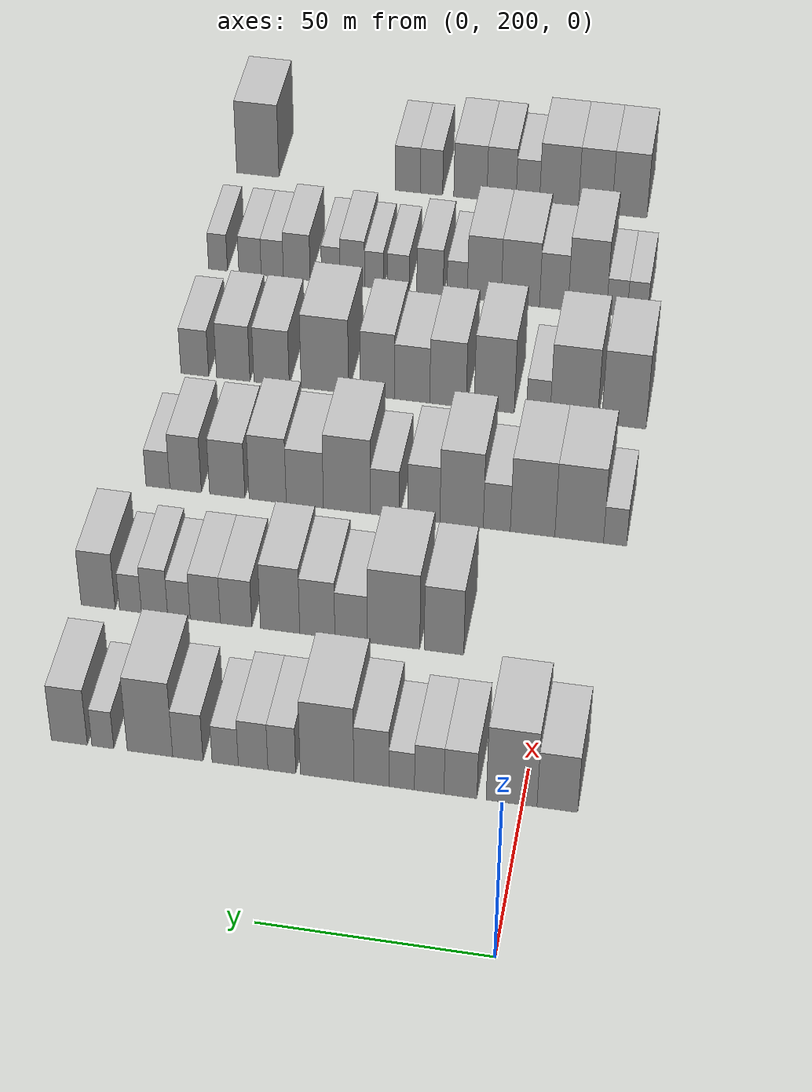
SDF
<sdf version="1.6">
 <world name="default">
  <model name="building_89">
   <static>1</static>
   <pose>50.0000 192.5561 0 0.000000 0.000000 0.000000</pose>
   <link name="link">
    <pose>0 0 9.00 0 0 0</pose>
    <collision name="collision"><geometry><box><size>20.0000 8.7755 18.0000</size></box></geometry></collision>
    <visual name="visual">
     <cast_shadows>0</cast_shadows>
     <geometry><box><size>20.0000 8.7755 18.0000</size></box></geometry>
     <material>
      <script>
       <uri>model://HANNAS_wall/materials/scripts</uri>
       <uri>model://HANNAS_wall/materials/textures</uri>
       <name>vrc/HANNAS_wall</name>
      </script>
     </material>
    </visual>
   </link>
  </model>
  <model name="building_90">
   <static>1</static>
   <pose>50.0000 202.4219 0 0.000000 0.000000 0.000000</pose>
   <link name="link">
    <pose>0 0 12.00 0 0 0</pose>
    <collision name="collision"><geometry><box><size>20.0000 10.9561 24.0000</size></box></geometry></collision>
    <visual name="visual">
     <cast_shadows>0</cast_shadows>
     <geometry><box><size>20.0000 10.9561 24.0000</size></box></geometry>
     <material>
      <script>
       <uri>model://HANNAS_wall/materials/scripts</uri>
       <uri>model://HANNAS_wall/materials/textures</uri>
       <name>vrc/HANNAS_wall</name>
      </script>
     </material>
    </visual>
   </link>
  </model>
  <model name="building_91">
   <static>1</static>
   <pose>50.0000 213.4700 0 0.000000 0.000000 0.000000</pose>
   <link name="link">
    <pose>0 0 7.50 0 0 0</pose>
    <collision name="collision"><geometry><box><size>20.0000 7.1399 15.0000</size></box></geometry></collision>
    <visual name="visual">
     <cast_shadows>0</cast_shadows>
     <geometry><box><size>20.0000 7.1399 15.0000</size></box></geometry>
     <material>
      <script>
       <uri>model://HANNAS_wall/materials/scripts</uri>
       <uri>model://HANNAS_wall/materials/textures</uri>
       <name>vrc/HANNAS_wall</name>
      </script>
     </material>
    </visual>
   </link>
  </model>
  <model name="building_92">
   <static>1</static>
   <pose>50.0000 220.2435 0 0.000000 0.000000 0.000000</pose>
   <link name="link">
    <pose>0 0 7.50 0 0 0</pose>
    <collision name="collision"><geometry><box><size>20.0000 6.4072 15.0000</size></box></geometry></collision>
    <visual name="visual">
     <cast_shadows>0</cast_shadows>
     <geometry><box><size>20.0000 6.4072 15.0000</size></box></geometry>
     <material>
      <script>
       <uri>model://HANNAS_wall/materials/scripts</uri>
       <uri>model://HANNAS_wall/materials/textures</uri>
       <name>vrc/HANNAS_wall</name>
      </script>
     </material>
    </visual>
   </link>
  </model>
  <model name="building_93">
   <static>1</static>
   <pose>50.0000 226.2463 0 0.000000 0.000000 0.000000</pose>
   <link name="link">
    <pose>0 0 6.00 0 0 0</pose>
    <collision name="collision"><geometry><box><size>20.0000 5.5982 12.0000</size></box></geometry></collision>
    <visual name="visual">
     <cast_shadows>0</cast_shadows>
     <geometry><box><size>20.0000 5.5982 12.0000</size></box></geometry>
     <material>
      <script>
       <uri>model://HANNAS_wall/materials/scripts</uri>
       <uri>model://HANNAS_wall/materials/textures</uri>
       <name>vrc/HANNAS_wall</name>
      </script>
     </material>
    </visual>
   </link>
  </model>
  <model name="building_94">
   <static>1</static>
   <pose>50.0000 232.8558 0 0.000000 0.000000 0.000000</pose>
   <link name="link">
    <pose>0 0 9.00 0 0 0</pose>
    <collision name="collision"><geometry><box><size>20.0000 7.6208 18.0000</size></box></geometry></collision>
    <visual name="visual">
     <cast_shadows>0</cast_shadows>
     <geometry><box><size>20.0000 7.6208 18.0000</size></box></geometry>
     <material>
      <script>
       <uri>model://HANNAS_wall/materials/scripts</uri>
       <uri>model://HANNAS_wall/materials/textures</uri>
       <name>vrc/HANNAS_wall</name>
      </script>
     </material>
    </visual>
   </link>
  </model>
  <model name="building_95">
   <static>1</static>
   <pose>50.0000 242.5334 0 0.000000 0.000000 0.000000</pose>
   <link name="link">
    <pose>0 0 12.00 0 0 0</pose>
    <collision name="collision"><geometry><box><size>20.0000 11.7346 24.0000</size></box></geometry></collision>
    <visual name="visual">
     <cast_shadows>0</cast_shadows>
     <geometry><box><size>20.0000 11.7346 24.0000</size></box></geometry>
     <material>
      <script>
       <uri>model://HANNAS_wall/materials/scripts</uri>
       <uri>model://HANNAS_wall/materials/textures</uri>
       <name>vrc/HANNAS_wall</name>
      </script>
     </material>
    </visual>
   </link>
  </model>
  <model name="building_96">
   <static>1</static>
   <pose>50.0000 252.4627 0 0.000000 0.000000 0.000000</pose>
   <link name="link">
    <pose>0 0 7.50 0 0 0</pose>
    <collision name="collision"><geometry><box><size>20.0000 6.1239 15.0000</size></box></geometry></collision>
    <visual name="visual">
     <cast_shadows>0</cast_shadows>
     <geometry><box><size>20.0000 6.1239 15.0000</size></box></geometry>
     <material>
      <script>
       <uri>model://HANNAS_wall/materials/scripts</uri>
       <uri>model://HANNAS_wall/materials/textures</uri>
       <name>vrc/HANNAS_wall</name>
      </script>
     </material>
    </visual>
   </link>
  </model>
  <model name="building_97">
   <static>1</static>
   <pose>50.0000 258.7908 0 0.000000 0.000000 0.000000</pose>
   <link name="link">
    <pose>0 0 7.50 0 0 0</pose>
    <collision name="collision"><geometry><box><size>20.0000 6.5323 15.0000</size></box></geometry></collision>
    <visual name="visual">
     <cast_shadows>0</cast_shadows>
     <geometry><box><size>20.0000 6.5323 15.0000</size></box></geometry>
     <material>
      <script>
       <uri>model://HANNAS_wall/materials/scripts</uri>
       <uri>model://HANNAS_wall/materials/textures</uri>
       <name>vrc/HANNAS_wall</name>
      </script>
     </material>
    </visual>
   </link>
  </model>
  <model name="building_98">
   <static>1</static>
   <pose>50.0000 264.9572 0 0.000000 0.000000 0.000000</pose>
   <link name="link">
    <pose>0 0 6.00 0 0 0</pose>
    <collision name="collision"><geometry><box><size>20.0000 5.8004 12.0000</size></box></geometry></collision>
    <visual name="visual">
     <cast_shadows>0</cast_shadows>
     <geometry><box><size>20.0000 5.8004 12.0000</size></box></geometry>
     <material>
      <script>
       <uri>model://HANNAS_wall/materials/scripts</uri>
       <uri>model://HANNAS_wall/materials/textures</uri>
       <name>vrc/HANNAS_wall</name>
      </script>
     </material>
    </visual>
   </link>
  </model>
  <model name="building_99">
   <static>1</static>
   <pose>50.0000 273.2261 0 0.000000 0.000000 0.000000</pose>
   <link name="link">
    <pose>0 0 7.50 0 0 0</pose>
    <collision name="collision"><geometry><box><size>20.0000 6.7375 15.0000</size></box></geometry></collision>
    <visual name="visual">
     <cast_shadows>0</cast_shadows>
     <geometry><box><size>20.0000 6.7375 15.0000</size></box></geometry>
     <material>
      <script>
       <uri>model://HANNAS_wall/materials/scripts</uri>
       <uri>model://HANNAS_wall/materials/textures</uri>
       <name>vrc/HANNAS_wall</name>
      </script>
     </material>
    </visual>
   </link>
  </model>
  <model name="building_100">
   <static>1</static>
   <pose>50.0000 281.6582 0 0.000000 0.000000 0.000000</pose>
   <link name="link">
    <pose>0 0 12.00 0 0 0</pose>
    <collision name="collision"><geometry><box><size>20.0000 10.1267 24.0000</size></box></geometry></collision>
    <visual name="visual">
     <cast_shadows>0</cast_shadows>
     <geometry><box><size>20.0000 10.1267 24.0000</size></box></geometry>
     <material>
      <script>
       <uri>model://HANNAS_wall/materials/scripts</uri>
       <uri>model://HANNAS_wall/materials/textures</uri>
       <name>vrc/HANNAS_wall</name>
      </script>
     </material>
    </visual>
   </link>
  </model>
  <model name="building_101">
   <static>1</static>
   <pose>50.0000 292.1783 0 0.000000 0.000000 0.000000</pose>
   <link name="link">
    <pose>0 0 6.00 0 0 0</pose>
    <collision name="collision"><geometry><box><size>20.0000 4.9134 12.0000</size></box></geometry></collision>
    <visual name="visual">
     <cast_shadows>0</cast_shadows>
     <geometry><box><size>20.0000 4.9134 12.0000</size></box></geometry>
     <material>
      <script>
       <uri>model://HANNAS_wall/materials/scripts</uri>
       <uri>model://HANNAS_wall/materials/textures</uri>
       <name>vrc/HANNAS_wall</name>
      </script>
     </material>
    </visual>
   </link>
  </model>
  <model name="building_102">
   <static>1</static>
   <pose>50.0000 299.6724 0 0.000000 0.000000 0.000000</pose>
   <link name="link">
    <pose>0 0 9.00 0 0 0</pose>
    <collision name="collision"><geometry><box><size>20.0000 8.0748 18.0000</size></box></geometry></collision>
    <visual name="visual">
     <cast_shadows>0</cast_shadows>
     <geometry><box><size>20.0000 8.0748 18.0000</size></box></geometry>
     <material>
      <script>
       <uri>model://HANNAS_wall/materials/scripts</uri>
       <uri>model://HANNAS_wall/materials/textures</uri>
       <name>vrc/HANNAS_wall</name>
      </script>
     </material>
    </visual>
   </link>
  </model>
  <model name="building_228">
   <static>1</static>
   <pose>90.0000 223.4362 0 0.000000 0.000000 0.000000</pose>
   <link name="link">
    <pose>0 0 10.50 0 0 0</pose>
    <collision name="collision"><geometry><box><size>20.0000 8.9906 21.0000</size></box></geometry></collision>
    <visual name="visual">
     <cast_shadows>0</cast_shadows>
     <geometry><box><size>20.0000 8.9906 21.0000</size></box></geometry>
     <material>
      <script>
       <uri>model://HANNAS_wall/materials/scripts</uri>
       <uri>model://HANNAS_wall/materials/textures</uri>
       <name>vrc/HANNAS_wall</name>
      </script>
     </material>
    </visual>
   </link>
  </model>
  <model name="building_229">
   <static>1</static>
   <pose>90.0000 234.9089 0 0.000000 0.000000 0.000000</pose>
   <link name="link">
    <pose>0 0 12.00 0 0 0</pose>
    <collision name="collision"><geometry><box><size>20.0000 11.9550 24.0000</size></box></geometry></collision>
    <visual name="visual">
     <cast_shadows>0</cast_shadows>
     <geometry><box><size>20.0000 11.9550 24.0000</size></box></geometry>
     <material>
      <script>
       <uri>model://HANNAS_wall/materials/scripts</uri>
       <uri>model://HANNAS_wall/materials/textures</uri>
       <name>vrc/HANNAS_wall</name>
      </script>
     </material>
    </visual>
   </link>
  </model>
  <model name="building_230">
   <static>1</static>
   <pose>90.0000 244.6175 0 0.000000 0.000000 0.000000</pose>
   <link name="link">
    <pose>0 0 7.50 0 0 0</pose>
    <collision name="collision"><geometry><box><size>20.0000 7.4621 15.0000</size></box></geometry></collision>
    <visual name="visual">
     <cast_shadows>0</cast_shadows>
     <geometry><box><size>20.0000 7.4621 15.0000</size></box></geometry>
     <material>
      <script>
       <uri>model://HANNAS_wall/materials/scripts</uri>
       <uri>model://HANNAS_wall/materials/textures</uri>
       <name>vrc/HANNAS_wall</name>
      </script>
     </material>
    </visual>
   </link>
  </model>
  <model name="building_231">
   <static>1</static>
   <pose>90.0000 252.3873 0 0.000000 0.000000 0.000000</pose>
   <link name="link">
    <pose>0 0 9.00 0 0 0</pose>
    <collision name="collision"><geometry><box><size>20.0000 8.0774 18.0000</size></box></geometry></collision>
    <visual name="visual">
     <cast_shadows>0</cast_shadows>
     <geometry><box><size>20.0000 8.0774 18.0000</size></box></geometry>
     <material>
      <script>
       <uri>model://HANNAS_wall/materials/scripts</uri>
       <uri>model://HANNAS_wall/materials/textures</uri>
       <name>vrc/HANNAS_wall</name>
      </script>
     </material>
    </visual>
   </link>
  </model>
  <model name="building_232">
   <static>1</static>
   <pose>90.0000 260.9508 0 0.000000 0.000000 0.000000</pose>
   <link name="link">
    <pose>0 0 10.50 0 0 0</pose>
    <collision name="collision"><geometry><box><size>20.0000 9.0497 21.0000</size></box></geometry></collision>
    <visual name="visual">
     <cast_shadows>0</cast_shadows>
     <geometry><box><size>20.0000 9.0497 21.0000</size></box></geometry>
     <material>
      <script>
       <uri>model://HANNAS_wall/materials/scripts</uri>
       <uri>model://HANNAS_wall/materials/textures</uri>
       <name>vrc/HANNAS_wall</name>
      </script>
     </material>
    </visual>
   </link>
  </model>
  <model name="building_233">
   <static>1</static>
   <pose>90.0000 271.1284 0 0.000000 0.000000 0.000000</pose>
   <link name="link">
    <pose>0 0 7.50 0 0 0</pose>
    <collision name="collision"><geometry><box><size>20.0000 7.3056 15.0000</size></box></geometry></collision>
    <visual name="visual">
     <cast_shadows>0</cast_shadows>
     <geometry><box><size>20.0000 7.3056 15.0000</size></box></geometry>
     <material>
      <script>
       <uri>model://HANNAS_wall/materials/scripts</uri>
       <uri>model://HANNAS_wall/materials/textures</uri>
       <name>vrc/HANNAS_wall</name>
      </script>
     </material>
    </visual>
   </link>
  </model>
  <model name="building_234">
   <static>1</static>
   <pose>90.0000 278.2809 0 0.000000 0.000000 0.000000</pose>
   <link name="link">
    <pose>0 0 7.50 0 0 0</pose>
    <collision name="collision"><geometry><box><size>20.0000 6.9993 15.0000</size></box></geometry></collision>
    <visual name="visual">
     <cast_shadows>0</cast_shadows>
     <geometry><box><size>20.0000 6.9993 15.0000</size></box></geometry>
     <material>
      <script>
       <uri>model://HANNAS_wall/materials/scripts</uri>
       <uri>model://HANNAS_wall/materials/textures</uri>
       <name>vrc/HANNAS_wall</name>
      </script>
     </material>
    </visual>
   </link>
  </model>
  <model name="building_235">
   <static>1</static>
   <pose>90.0000 284.4036 0 0.000000 0.000000 0.000000</pose>
   <link name="link">
    <pose>0 0 6.00 0 0 0</pose>
    <collision name="collision"><geometry><box><size>20.0000 5.2460 12.0000</size></box></geometry></collision>
    <visual name="visual">
     <cast_shadows>0</cast_shadows>
     <geometry><box><size>20.0000 5.2460 12.0000</size></box></geometry>
     <material>
      <script>
       <uri>model://HANNAS_wall/materials/scripts</uri>
       <uri>model://HANNAS_wall/materials/textures</uri>
       <name>vrc/HANNAS_wall</name>
      </script>
     </material>
    </visual>
   </link>
  </model>
  <model name="building_236">
   <static>1</static>
   <pose>90.0000 290.0798 0 0.000000 0.000000 0.000000</pose>
   <link name="link">
    <pose>0 0 7.50 0 0 0</pose>
    <collision name="collision"><geometry><box><size>20.0000 6.1064 15.0000</size></box></geometry></collision>
    <visual name="visual">
     <cast_shadows>0</cast_shadows>
     <geometry><box><size>20.0000 6.1064 15.0000</size></box></geometry>
     <material>
      <script>
       <uri>model://HANNAS_wall/materials/scripts</uri>
       <uri>model://HANNAS_wall/materials/textures</uri>
       <name>vrc/HANNAS_wall</name>
      </script>
     </material>
    </visual>
   </link>
  </model>
  <model name="building_237">
   <static>1</static>
   <pose>90.0000 295.7086 0 0.000000 0.000000 0.000000</pose>
   <link name="link">
    <pose>0 0 6.00 0 0 0</pose>
    <collision name="collision"><geometry><box><size>20.0000 5.1510 12.0000</size></box></geometry></collision>
    <visual name="visual">
     <cast_shadows>0</cast_shadows>
     <geometry><box><size>20.0000 5.1510 12.0000</size></box></geometry>
     <material>
      <script>
       <uri>model://HANNAS_wall/materials/scripts</uri>
       <uri>model://HANNAS_wall/materials/textures</uri>
       <name>vrc/HANNAS_wall</name>
      </script>
     </material>
    </visual>
   </link>
  </model>
  <model name="building_238">
   <static>1</static>
   <pose>90.0000 303.2688 0 0.000000 0.000000 0.000000</pose>
   <link name="link">
    <pose>0 0 9.00 0 0 0</pose>
    <collision name="collision"><geometry><box><size>20.0000 7.9694 18.0000</size></box></geometry></collision>
    <visual name="visual">
     <cast_shadows>0</cast_shadows>
     <geometry><box><size>20.0000 7.9694 18.0000</size></box></geometry>
     <material>
      <script>
       <uri>model://HANNAS_wall/materials/scripts</uri>
       <uri>model://HANNAS_wall/materials/textures</uri>
       <name>vrc/HANNAS_wall</name>
      </script>
     </material>
    </visual>
   </link>
  </model>
  <model name="building_363">
   <static>1</static>
   <pose>130.0000 189.4363 0 0.000000 0.000000 0.000000</pose>
   <link name="link">
    <pose>0 0 6.00 0 0 0</pose>
    <collision name="collision"><geometry><box><size>20.0000 5.4448 12.0000</size></box></geometry></collision>
    <visual name="visual">
     <cast_shadows>0</cast_shadows>
     <geometry><box><size>20.0000 5.4448 12.0000</size></box></geometry>
     <material>
      <script>
       <uri>model://HANNAS_wall/materials/scripts</uri>
       <uri>model://HANNAS_wall/materials/textures</uri>
       <name>vrc/HANNAS_wall</name>
      </script>
     </material>
    </visual>
   </link>
  </model>
  <model name="building_364">
   <static>1</static>
   <pose>130.0000 197.8710 0 0.000000 0.000000 0.000000</pose>
   <link name="link">
    <pose>0 0 12.00 0 0 0</pose>
    <collision name="collision"><geometry><box><size>20.0000 11.4246 24.0000</size></box></geometry></collision>
    <visual name="visual">
     <cast_shadows>0</cast_shadows>
     <geometry><box><size>20.0000 11.4246 24.0000</size></box></geometry>
     <material>
      <script>
       <uri>model://HANNAS_wall/materials/scripts</uri>
       <uri>model://HANNAS_wall/materials/textures</uri>
       <name>vrc/HANNAS_wall</name>
      </script>
     </material>
    </visual>
   </link>
  </model>
  <model name="building_365">
   <static>1</static>
   <pose>130.0000 208.8414 0 0.000000 0.000000 0.000000</pose>
   <link name="link">
    <pose>0 0 12.00 0 0 0</pose>
    <collision name="collision"><geometry><box><size>20.0000 10.5162 24.0000</size></box></geometry></collision>
    <visual name="visual">
     <cast_shadows>0</cast_shadows>
     <geometry><box><size>20.0000 10.5162 24.0000</size></box></geometry>
     <material>
      <script>
       <uri>model://HANNAS_wall/materials/scripts</uri>
       <uri>model://HANNAS_wall/materials/textures</uri>
       <name>vrc/HANNAS_wall</name>
      </script>
     </material>
    </visual>
   </link>
  </model>
  <model name="building_366">
   <static>1</static>
   <pose>130.0000 217.3030 0 0.000000 0.000000 0.000000</pose>
   <link name="link">
    <pose>0 0 7.50 0 0 0</pose>
    <collision name="collision"><geometry><box><size>20.0000 6.4068 15.0000</size></box></geometry></collision>
    <visual name="visual">
     <cast_shadows>0</cast_shadows>
     <geometry><box><size>20.0000 6.4068 15.0000</size></box></geometry>
     <material>
      <script>
       <uri>model://HANNAS_wall/materials/scripts</uri>
       <uri>model://HANNAS_wall/materials/textures</uri>
       <name>vrc/HANNAS_wall</name>
      </script>
     </material>
    </visual>
   </link>
  </model>
  <model name="building_367">
   <static>1</static>
   <pose>130.0000 225.6526 0 0.000000 0.000000 0.000000</pose>
   <link name="link">
    <pose>0 0 12.00 0 0 0</pose>
    <collision name="collision"><geometry><box><size>20.0000 10.2924 24.0000</size></box></geometry></collision>
    <visual name="visual">
     <cast_shadows>0</cast_shadows>
     <geometry><box><size>20.0000 10.2924 24.0000</size></box></geometry>
     <material>
      <script>
       <uri>model://HANNAS_wall/materials/scripts</uri>
       <uri>model://HANNAS_wall/materials/textures</uri>
       <name>vrc/HANNAS_wall</name>
      </script>
     </material>
    </visual>
   </link>
  </model>
  <model name="building_368">
   <static>1</static>
   <pose>130.0000 234.6421 0 0.000000 0.000000 0.000000</pose>
   <link name="link">
    <pose>0 0 9.00 0 0 0</pose>
    <collision name="collision"><geometry><box><size>20.0000 7.6867 18.0000</size></box></geometry></collision>
    <visual name="visual">
     <cast_shadows>0</cast_shadows>
     <geometry><box><size>20.0000 7.6867 18.0000</size></box></geometry>
     <material>
      <script>
       <uri>model://HANNAS_wall/materials/scripts</uri>
       <uri>model://HANNAS_wall/materials/textures</uri>
       <name>vrc/HANNAS_wall</name>
      </script>
     </material>
    </visual>
   </link>
  </model>
  <model name="building_369">
   <static>1</static>
   <pose>130.0000 243.9043 0 0.000000 0.000000 0.000000</pose>
   <link name="link">
    <pose>0 0 7.50 0 0 0</pose>
    <collision name="collision"><geometry><box><size>20.0000 6.8377 15.0000</size></box></geometry></collision>
    <visual name="visual">
     <cast_shadows>0</cast_shadows>
     <geometry><box><size>20.0000 6.8377 15.0000</size></box></geometry>
     <material>
      <script>
       <uri>model://HANNAS_wall/materials/scripts</uri>
       <uri>model://HANNAS_wall/materials/textures</uri>
       <name>vrc/HANNAS_wall</name>
      </script>
     </material>
    </visual>
   </link>
  </model>
  <model name="building_370">
   <static>1</static>
   <pose>130.0000 252.9753 0 0.000000 0.000000 0.000000</pose>
   <link name="link">
    <pose>0 0 12.00 0 0 0</pose>
    <collision name="collision"><geometry><box><size>20.0000 11.3042 24.0000</size></box></geometry></collision>
    <visual name="visual">
     <cast_shadows>0</cast_shadows>
     <geometry><box><size>20.0000 11.3042 24.0000</size></box></geometry>
     <material>
      <script>
       <uri>model://HANNAS_wall/materials/scripts</uri>
       <uri>model://HANNAS_wall/materials/textures</uri>
       <name>vrc/HANNAS_wall</name>
      </script>
     </material>
    </visual>
   </link>
  </model>
  <model name="building_371">
   <static>1</static>
   <pose>130.0000 263.1048 0 0.000000 0.000000 0.000000</pose>
   <link name="link">
    <pose>0 0 9.00 0 0 0</pose>
    <collision name="collision"><geometry><box><size>20.0000 8.9550 18.0000</size></box></geometry></collision>
    <visual name="visual">
     <cast_shadows>0</cast_shadows>
     <geometry><box><size>20.0000 8.9550 18.0000</size></box></geometry>
     <material>
      <script>
       <uri>model://HANNAS_wall/materials/scripts</uri>
       <uri>model://HANNAS_wall/materials/textures</uri>
       <name>vrc/HANNAS_wall</name>
      </script>
     </material>
    </visual>
   </link>
  </model>
  <model name="building_372">
   <static>1</static>
   <pose>130.0000 272.0716 0 0.000000 0.000000 0.000000</pose>
   <link name="link">
    <pose>0 0 10.50 0 0 0</pose>
    <collision name="collision"><geometry><box><size>20.0000 8.9786 21.0000</size></box></geometry></collision>
    <visual name="visual">
     <cast_shadows>0</cast_shadows>
     <geometry><box><size>20.0000 8.9786 21.0000</size></box></geometry>
     <material>
      <script>
       <uri>model://HANNAS_wall/materials/scripts</uri>
       <uri>model://HANNAS_wall/materials/textures</uri>
       <name>vrc/HANNAS_wall</name>
      </script>
     </material>
    </visual>
   </link>
  </model>
  <model name="building_373">
   <static>1</static>
   <pose>130.0000 281.8407 0 0.000000 0.000000 0.000000</pose>
   <link name="link">
    <pose>0 0 9.00 0 0 0</pose>
    <collision name="collision"><geometry><box><size>20.0000 8.5597 18.0000</size></box></geometry></collision>
    <visual name="visual">
     <cast_shadows>0</cast_shadows>
     <geometry><box><size>20.0000 8.5597 18.0000</size></box></geometry>
     <material>
      <script>
       <uri>model://HANNAS_wall/materials/scripts</uri>
       <uri>model://HANNAS_wall/materials/textures</uri>
       <name>vrc/HANNAS_wall</name>
      </script>
     </material>
    </visual>
   </link>
  </model>
  <model name="building_374">
   <static>1</static>
   <pose>130.0000 291.9577 0 0.000000 0.000000 0.000000</pose>
   <link name="link">
    <pose>0 0 9.00 0 0 0</pose>
    <collision name="collision"><geometry><box><size>20.0000 7.6742 18.0000</size></box></geometry></collision>
    <visual name="visual">
     <cast_shadows>0</cast_shadows>
     <geometry><box><size>20.0000 7.6742 18.0000</size></box></geometry>
     <material>
      <script>
       <uri>model://HANNAS_wall/materials/scripts</uri>
       <uri>model://HANNAS_wall/materials/textures</uri>
       <name>vrc/HANNAS_wall</name>
      </script>
     </material>
    </visual>
   </link>
  </model>
  <model name="building_375">
   <static>1</static>
   <pose>130.0000 298.6997 0 0.000000 0.000000 0.000000</pose>
   <link name="link">
    <pose>0 0 6.00 0 0 0</pose>
    <collision name="collision"><geometry><box><size>20.0000 5.8099 12.0000</size></box></geometry></collision>
    <visual name="visual">
     <cast_shadows>0</cast_shadows>
     <geometry><box><size>20.0000 5.8099 12.0000</size></box></geometry>
     <material>
      <script>
       <uri>model://HANNAS_wall/materials/scripts</uri>
       <uri>model://HANNAS_wall/materials/textures</uri>
       <name>vrc/HANNAS_wall</name>
      </script>
     </material>
    </visual>
   </link>
  </model>
  <model name="building_494">
   <static>1</static>
   <pose>170.0000 191.9254 0 0.000000 0.000000 0.000000</pose>
   <link name="link">
    <pose>0 0 12.00 0 0 0</pose>
    <collision name="collision"><geometry><box><size>20.0000 10.8734 24.0000</size></box></geometry></collision>
    <visual name="visual">
     <cast_shadows>0</cast_shadows>
     <geometry><box><size>20.0000 10.8734 24.0000</size></box></geometry>
     <material>
      <script>
       <uri>model://HANNAS_wall/materials/scripts</uri>
       <uri>model://HANNAS_wall/materials/textures</uri>
       <name>vrc/HANNAS_wall</name>
      </script>
     </material>
    </visual>
   </link>
  </model>
  <model name="building_495">
   <static>1</static>
   <pose>170.0000 204.1786 0 0.000000 0.000000 0.000000</pose>
   <link name="link">
    <pose>0 0 12.00 0 0 0</pose>
    <collision name="collision"><geometry><box><size>20.0000 11.6330 24.0000</size></box></geometry></collision>
    <visual name="visual">
     <cast_shadows>0</cast_shadows>
     <geometry><box><size>20.0000 11.6330 24.0000</size></box></geometry>
     <material>
      <script>
       <uri>model://HANNAS_wall/materials/scripts</uri>
       <uri>model://HANNAS_wall/materials/textures</uri>
       <name>vrc/HANNAS_wall</name>
      </script>
     </material>
    </visual>
   </link>
  </model>
  <model name="building_496">
   <static>1</static>
   <pose>170.0000 212.9146 0 0.000000 0.000000 0.000000</pose>
   <link name="link">
    <pose>0 0 6.00 0 0 0</pose>
    <collision name="collision"><geometry><box><size>20.0000 5.8390 12.0000</size></box></geometry></collision>
    <visual name="visual">
     <cast_shadows>0</cast_shadows>
     <geometry><box><size>20.0000 5.8390 12.0000</size></box></geometry>
     <material>
      <script>
       <uri>model://HANNAS_wall/materials/scripts</uri>
       <uri>model://HANNAS_wall/materials/textures</uri>
       <name>vrc/HANNAS_wall</name>
      </script>
     </material>
    </visual>
   </link>
  </model>
  <model name="building_497">
   <static>1</static>
   <pose>170.0000 223.7863 0 0.000000 0.000000 0.000000</pose>
   <link name="link">
    <pose>0 0 12.00 0 0 0</pose>
    <collision name="collision"><geometry><box><size>20.0000 9.9045 24.0000</size></box></geometry></collision>
    <visual name="visual">
     <cast_shadows>0</cast_shadows>
     <geometry><box><size>20.0000 9.9045 24.0000</size></box></geometry>
     <material>
      <script>
       <uri>model://HANNAS_wall/materials/scripts</uri>
       <uri>model://HANNAS_wall/materials/textures</uri>
       <name>vrc/HANNAS_wall</name>
      </script>
     </material>
    </visual>
   </link>
  </model>
  <model name="building_498">
   <static>1</static>
   <pose>170.0000 235.2452 0 0.000000 0.000000 0.000000</pose>
   <link name="link">
    <pose>0 0 10.50 0 0 0</pose>
    <collision name="collision"><geometry><box><size>20.0000 9.0133 21.0000</size></box></geometry></collision>
    <visual name="visual">
     <cast_shadows>0</cast_shadows>
     <geometry><box><size>20.0000 9.0133 21.0000</size></box></geometry>
     <material>
      <script>
       <uri>model://HANNAS_wall/materials/scripts</uri>
       <uri>model://HANNAS_wall/materials/textures</uri>
       <name>vrc/HANNAS_wall</name>
      </script>
     </material>
    </visual>
   </link>
  </model>
  <model name="building_499">
   <static>1</static>
   <pose>170.0000 244.1071 0 0.000000 0.000000 0.000000</pose>
   <link name="link">
    <pose>0 0 9.00 0 0 0</pose>
    <collision name="collision"><geometry><box><size>20.0000 8.7104 18.0000</size></box></geometry></collision>
    <visual name="visual">
     <cast_shadows>0</cast_shadows>
     <geometry><box><size>20.0000 8.7104 18.0000</size></box></geometry>
     <material>
      <script>
       <uri>model://HANNAS_wall/materials/scripts</uri>
       <uri>model://HANNAS_wall/materials/textures</uri>
       <name>vrc/HANNAS_wall</name>
      </script>
     </material>
    </visual>
   </link>
  </model>
  <model name="building_500">
   <static>1</static>
   <pose>170.0000 252.7345 0 0.000000 0.000000 0.000000</pose>
   <link name="link">
    <pose>0 0 10.50 0 0 0</pose>
    <collision name="collision"><geometry><box><size>20.0000 8.5444 21.0000</size></box></geometry></collision>
    <visual name="visual">
     <cast_shadows>0</cast_shadows>
     <geometry><box><size>20.0000 8.5444 21.0000</size></box></geometry>
     <material>
      <script>
       <uri>model://HANNAS_wall/materials/scripts</uri>
       <uri>model://HANNAS_wall/materials/textures</uri>
       <name>vrc/HANNAS_wall</name>
      </script>
     </material>
    </visual>
   </link>
  </model>
  <model name="building_501">
   <static>1</static>
   <pose>170.0000 265.9440 0 0.000000 0.000000 0.000000</pose>
   <link name="link">
    <pose>0 0 12.00 0 0 0</pose>
    <collision name="collision"><geometry><box><size>20.0000 11.8745 24.0000</size></box></geometry></collision>
    <visual name="visual">
     <cast_shadows>0</cast_shadows>
     <geometry><box><size>20.0000 11.8745 24.0000</size></box></geometry>
     <material>
      <script>
       <uri>model://HANNAS_wall/materials/scripts</uri>
       <uri>model://HANNAS_wall/materials/textures</uri>
       <name>vrc/HANNAS_wall</name>
      </script>
     </material>
    </visual>
   </link>
  </model>
  <model name="building_502">
   <static>1</static>
   <pose>170.0000 279.3338 0 0.000000 0.000000 0.000000</pose>
   <link name="link">
    <pose>0 0 9.00 0 0 0</pose>
    <collision name="collision"><geometry><box><size>20.0000 8.9051 18.0000</size></box></geometry></collision>
    <visual name="visual">
     <cast_shadows>0</cast_shadows>
     <geometry><box><size>20.0000 8.9051 18.0000</size></box></geometry>
     <material>
      <script>
       <uri>model://HANNAS_wall/materials/scripts</uri>
       <uri>model://HANNAS_wall/materials/textures</uri>
       <name>vrc/HANNAS_wall</name>
      </script>
     </material>
    </visual>
   </link>
  </model>
  <model name="building_503">
   <static>1</static>
   <pose>170.0000 289.0062 0 0.000000 0.000000 0.000000</pose>
   <link name="link">
    <pose>0 0 9.00 0 0 0</pose>
    <collision name="collision"><geometry><box><size>20.0000 8.4397 18.0000</size></box></geometry></collision>
    <visual name="visual">
     <cast_shadows>0</cast_shadows>
     <geometry><box><size>20.0000 8.4397 18.0000</size></box></geometry>
     <material>
      <script>
       <uri>model://HANNAS_wall/materials/scripts</uri>
       <uri>model://HANNAS_wall/materials/textures</uri>
       <name>vrc/HANNAS_wall</name>
      </script>
     </material>
    </visual>
   </link>
  </model>
  <model name="building_504">
   <static>1</static>
   <pose>170.0000 298.7454 0 0.000000 0.000000 0.000000</pose>
   <link name="link">
    <pose>0 0 7.50 0 0 0</pose>
    <collision name="collision"><geometry><box><size>20.0000 7.0386 15.0000</size></box></geometry></collision>
    <visual name="visual">
     <cast_shadows>0</cast_shadows>
     <geometry><box><size>20.0000 7.0386 15.0000</size></box></geometry>
     <material>
      <script>
       <uri>model://HANNAS_wall/materials/scripts</uri>
       <uri>model://HANNAS_wall/materials/textures</uri>
       <name>vrc/HANNAS_wall</name>
      </script>
     </material>
    </visual>
   </link>
  </model>
  <model name="building_634">
   <static>1</static>
   <pose>210.0000 193.0041 0 0.000000 0.000000 0.000000</pose>
   <link name="link">
    <pose>0 0 6.00 0 0 0</pose>
    <collision name="collision"><geometry><box><size>20.0000 5.1857 12.0000</size></box></geometry></collision>
    <visual name="visual">
     <cast_shadows>0</cast_shadows>
     <geometry><box><size>20.0000 5.1857 12.0000</size></box></geometry>
     <material>
      <script>
       <uri>model://HANNAS_wall/materials/scripts</uri>
       <uri>model://HANNAS_wall/materials/textures</uri>
       <name>vrc/HANNAS_wall</name>
      </script>
     </material>
    </visual>
   </link>
  </model>
  <model name="building_635">
   <static>1</static>
   <pose>210.0000 198.2404 0 0.000000 0.000000 0.000000</pose>
   <link name="link">
    <pose>0 0 6.00 0 0 0</pose>
    <collision name="collision"><geometry><box><size>20.0000 5.2869 12.0000</size></box></geometry></collision>
    <visual name="visual">
     <cast_shadows>0</cast_shadows>
     <geometry><box><size>20.0000 5.2869 12.0000</size></box></geometry>
     <material>
      <script>
       <uri>model://HANNAS_wall/materials/scripts</uri>
       <uri>model://HANNAS_wall/materials/textures</uri>
       <name>vrc/HANNAS_wall</name>
      </script>
     </material>
    </visual>
   </link>
  </model>
  <model name="building_636">
   <static>1</static>
   <pose>210.0000 205.7988 0 0.000000 0.000000 0.000000</pose>
   <link name="link">
    <pose>0 0 12.00 0 0 0</pose>
    <collision name="collision"><geometry><box><size>20.0000 9.8299 24.0000</size></box></geometry></collision>
    <visual name="visual">
     <cast_shadows>0</cast_shadows>
     <geometry><box><size>20.0000 9.8299 24.0000</size></box></geometry>
     <material>
      <script>
       <uri>model://HANNAS_wall/materials/scripts</uri>
       <uri>model://HANNAS_wall/materials/textures</uri>
       <name>vrc/HANNAS_wall</name>
      </script>
     </material>
    </visual>
   </link>
  </model>
  <model name="building_637">
   <static>1</static>
   <pose>210.0000 214.3613 0 0.000000 0.000000 0.000000</pose>
   <link name="link">
    <pose>0 0 9.00 0 0 0</pose>
    <collision name="collision"><geometry><box><size>20.0000 7.2950 18.0000</size></box></geometry></collision>
    <visual name="visual">
     <cast_shadows>0</cast_shadows>
     <geometry><box><size>20.0000 7.2950 18.0000</size></box></geometry>
     <material>
      <script>
       <uri>model://HANNAS_wall/materials/scripts</uri>
       <uri>model://HANNAS_wall/materials/textures</uri>
       <name>vrc/HANNAS_wall</name>
      </script>
     </material>
    </visual>
   </link>
  </model>
  <model name="building_638">
   <static>1</static>
   <pose>210.0000 222.9503 0 0.000000 0.000000 0.000000</pose>
   <link name="link">
    <pose>0 0 10.50 0 0 0</pose>
    <collision name="collision"><geometry><box><size>20.0000 9.8830 21.0000</size></box></geometry></collision>
    <visual name="visual">
     <cast_shadows>0</cast_shadows>
     <geometry><box><size>20.0000 9.8830 21.0000</size></box></geometry>
     <material>
      <script>
       <uri>model://HANNAS_wall/materials/scripts</uri>
       <uri>model://HANNAS_wall/materials/textures</uri>
       <name>vrc/HANNAS_wall</name>
      </script>
     </material>
    </visual>
   </link>
  </model>
  <model name="building_639">
   <static>1</static>
   <pose>210.0000 232.2460 0 0.000000 0.000000 0.000000</pose>
   <link name="link">
    <pose>0 0 10.50 0 0 0</pose>
    <collision name="collision"><geometry><box><size>20.0000 8.7084 21.0000</size></box></geometry></collision>
    <visual name="visual">
     <cast_shadows>0</cast_shadows>
     <geometry><box><size>20.0000 8.7084 21.0000</size></box></geometry>
     <material>
      <script>
       <uri>model://HANNAS_wall/materials/scripts</uri>
       <uri>model://HANNAS_wall/materials/textures</uri>
       <name>vrc/HANNAS_wall</name>
      </script>
     </material>
    </visual>
   </link>
  </model>
  <model name="building_640">
   <static>1</static>
   <pose>210.0000 239.2090 0 0.000000 0.000000 0.000000</pose>
   <link name="link">
    <pose>0 0 6.00 0 0 0</pose>
    <collision name="collision"><geometry><box><size>20.0000 5.2176 12.0000</size></box></geometry></collision>
    <visual name="visual">
     <cast_shadows>0</cast_shadows>
     <geometry><box><size>20.0000 5.2176 12.0000</size></box></geometry>
     <material>
      <script>
       <uri>model://HANNAS_wall/materials/scripts</uri>
       <uri>model://HANNAS_wall/materials/textures</uri>
       <name>vrc/HANNAS_wall</name>
      </script>
     </material>
    </visual>
   </link>
  </model>
  <model name="building_641">
   <static>1</static>
   <pose>210.0000 246.2357 0 0.000000 0.000000 0.000000</pose>
   <link name="link">
    <pose>0 0 7.50 0 0 0</pose>
    <collision name="collision"><geometry><box><size>20.0000 6.8360 15.0000</size></box></geometry></collision>
    <visual name="visual">
     <cast_shadows>0</cast_shadows>
     <geometry><box><size>20.0000 6.8360 15.0000</size></box></geometry>
     <material>
      <script>
       <uri>model://HANNAS_wall/materials/scripts</uri>
       <uri>model://HANNAS_wall/materials/textures</uri>
       <name>vrc/HANNAS_wall</name>
      </script>
     </material>
    </visual>
   </link>
  </model>
  <model name="building_642">
   <static>1</static>
   <pose>210.0000 254.4975 0 0.000000 0.000000 0.000000</pose>
   <link name="link">
    <pose>0 0 6.00 0 0 0</pose>
    <collision name="collision"><geometry><box><size>20.0000 5.6874 12.0000</size></box></geometry></collision>
    <visual name="visual">
     <cast_shadows>0</cast_shadows>
     <geometry><box><size>20.0000 5.6874 12.0000</size></box></geometry>
     <material>
      <script>
       <uri>model://HANNAS_wall/materials/scripts</uri>
       <uri>model://HANNAS_wall/materials/textures</uri>
       <name>vrc/HANNAS_wall</name>
      </script>
     </material>
    </visual>
   </link>
  </model>
  <model name="building_643">
   <static>1</static>
   <pose>210.0000 260.7799 0 0.000000 0.000000 0.000000</pose>
   <link name="link">
    <pose>0 0 6.00 0 0 0</pose>
    <collision name="collision"><geometry><box><size>20.0000 4.8775 12.0000</size></box></geometry></collision>
    <visual name="visual">
     <cast_shadows>0</cast_shadows>
     <geometry><box><size>20.0000 4.8775 12.0000</size></box></geometry>
     <material>
      <script>
       <uri>model://HANNAS_wall/materials/scripts</uri>
       <uri>model://HANNAS_wall/materials/textures</uri>
       <name>vrc/HANNAS_wall</name>
      </script>
     </material>
    </visual>
   </link>
  </model>
  <model name="building_644">
   <static>1</static>
   <pose>210.0000 266.4121 0 0.000000 0.000000 0.000000</pose>
   <link name="link">
    <pose>0 0 7.50 0 0 0</pose>
    <collision name="collision"><geometry><box><size>20.0000 6.3869 15.0000</size></box></geometry></collision>
    <visual name="visual">
     <cast_shadows>0</cast_shadows>
     <geometry><box><size>20.0000 6.3869 15.0000</size></box></geometry>
     <material>
      <script>
       <uri>model://HANNAS_wall/materials/scripts</uri>
       <uri>model://HANNAS_wall/materials/textures</uri>
       <name>vrc/HANNAS_wall</name>
      </script>
     </material>
    </visual>
   </link>
  </model>
  <model name="building_645">
   <static>1</static>
   <pose>210.0000 272.0168 0 0.000000 0.000000 0.000000</pose>
   <link name="link">
    <pose>0 0 6.00 0 0 0</pose>
    <collision name="collision"><geometry><box><size>20.0000 4.8227 12.0000</size></box></geometry></collision>
    <visual name="visual">
     <cast_shadows>0</cast_shadows>
     <geometry><box><size>20.0000 4.8227 12.0000</size></box></geometry>
     <material>
      <script>
       <uri>model://HANNAS_wall/materials/scripts</uri>
       <uri>model://HANNAS_wall/materials/textures</uri>
       <name>vrc/HANNAS_wall</name>
      </script>
     </material>
    </visual>
   </link>
  </model>
  <model name="building_646">
   <static>1</static>
   <pose>210.0000 280.9269 0 0.000000 0.000000 0.000000</pose>
   <link name="link">
    <pose>0 0 7.50 0 0 0</pose>
    <collision name="collision"><geometry><box><size>20.0000 6.9975 15.0000</size></box></geometry></collision>
    <visual name="visual">
     <cast_shadows>0</cast_shadows>
     <geometry><box><size>20.0000 6.9975 15.0000</size></box></geometry>
     <material>
      <script>
       <uri>model://HANNAS_wall/materials/scripts</uri>
       <uri>model://HANNAS_wall/materials/textures</uri>
       <name>vrc/HANNAS_wall</name>
      </script>
     </material>
    </visual>
   </link>
  </model>
  <model name="building_647">
   <static>1</static>
   <pose>210.0000 287.3478 0 0.000000 0.000000 0.000000</pose>
   <link name="link">
    <pose>0 0 6.00 0 0 0</pose>
    <collision name="collision"><geometry><box><size>20.0000 5.8443 12.0000</size></box></geometry></collision>
    <visual name="visual">
     <cast_shadows>0</cast_shadows>
     <geometry><box><size>20.0000 5.8443 12.0000</size></box></geometry>
     <material>
      <script>
       <uri>model://HANNAS_wall/materials/scripts</uri>
       <uri>model://HANNAS_wall/materials/textures</uri>
       <name>vrc/HANNAS_wall</name>
      </script>
     </material>
    </visual>
   </link>
  </model>
  <model name="building_648">
   <static>1</static>
   <pose>210.0000 293.2109 0 0.000000 0.000000 0.000000</pose>
   <link name="link">
    <pose>0 0 6.00 0 0 0</pose>
    <collision name="collision"><geometry><box><size>20.0000 5.8819 12.0000</size></box></geometry></collision>
    <visual name="visual">
     <cast_shadows>0</cast_shadows>
     <geometry><box><size>20.0000 5.8819 12.0000</size></box></geometry>
     <material>
      <script>
       <uri>model://HANNAS_wall/materials/scripts</uri>
       <uri>model://HANNAS_wall/materials/textures</uri>
       <name>vrc/HANNAS_wall</name>
      </script>
     </material>
    </visual>
   </link>
  </model>
  <model name="building_649">
   <static>1</static>
   <pose>210.0000 301.6271 0 0.000000 0.000000 0.000000</pose>
   <link name="link">
    <pose>0 0 6.00 0 0 0</pose>
    <collision name="collision"><geometry><box><size>20.0000 4.9504 12.0000</size></box></geometry></collision>
    <visual name="visual">
     <cast_shadows>0</cast_shadows>
     <geometry><box><size>20.0000 4.9504 12.0000</size></box></geometry>
     <material>
      <script>
       <uri>model://HANNAS_wall/materials/scripts</uri>
       <uri>model://HANNAS_wall/materials/textures</uri>
       <name>vrc/HANNAS_wall</name>
      </script>
     </material>
    </visual>
   </link>
  </model>
  <model name="building_766">
   <static>1</static>
   <pose>250.0000 199.4825 0 0.000000 0.000000 0.000000</pose>
   <link name="link">
    <pose>0 0 10.50 0 0 0</pose>
    <collision name="collision"><geometry><box><size>20.0000 9.2569 21.0000</size></box></geometry></collision>
    <visual name="visual">
     <cast_shadows>0</cast_shadows>
     <geometry><box><size>20.0000 9.2569 21.0000</size></box></geometry>
     <material>
      <script>
       <uri>model://HANNAS_wall/materials/scripts</uri>
       <uri>model://HANNAS_wall/materials/textures</uri>
       <name>vrc/HANNAS_wall</name>
      </script>
     </material>
    </visual>
   </link>
  </model>
  <model name="building_767">
   <static>1</static>
   <pose>250.0000 208.5823 0 0.000000 0.000000 0.000000</pose>
   <link name="link">
    <pose>0 0 10.50 0 0 0</pose>
    <collision name="collision"><geometry><box><size>20.0000 8.9428 21.0000</size></box></geometry></collision>
    <visual name="visual">
     <cast_shadows>0</cast_shadows>
     <geometry><box><size>20.0000 8.9428 21.0000</size></box></geometry>
     <material>
      <script>
       <uri>model://HANNAS_wall/materials/scripts</uri>
       <uri>model://HANNAS_wall/materials/textures</uri>
       <name>vrc/HANNAS_wall</name>
      </script>
     </material>
    </visual>
   </link>
  </model>
  <model name="building_768">
   <static>1</static>
   <pose>250.0000 218.2451 0 0.000000 0.000000 0.000000</pose>
   <link name="link">
    <pose>0 0 10.50 0 0 0</pose>
    <collision name="collision"><geometry><box><size>20.0000 10.3827 21.0000</size></box></geometry></collision>
    <visual name="visual">
     <cast_shadows>0</cast_shadows>
     <geometry><box><size>20.0000 10.3827 21.0000</size></box></geometry>
     <material>
      <script>
       <uri>model://HANNAS_wall/materials/scripts</uri>
       <uri>model://HANNAS_wall/materials/textures</uri>
       <name>vrc/HANNAS_wall</name>
      </script>
     </material>
    </visual>
   </link>
  </model>
  <model name="building_769">
   <static>1</static>
   <pose>250.0000 226.5622 0 0.000000 0.000000 0.000000</pose>
   <link name="link">
    <pose>0 0 7.50 0 0 0</pose>
    <collision name="collision"><geometry><box><size>20.0000 6.2515 15.0000</size></box></geometry></collision>
    <visual name="visual">
     <cast_shadows>0</cast_shadows>
     <geometry><box><size>20.0000 6.2515 15.0000</size></box></geometry>
     <material>
      <script>
       <uri>model://HANNAS_wall/materials/scripts</uri>
       <uri>model://HANNAS_wall/materials/textures</uri>
       <name>vrc/HANNAS_wall</name>
      </script>
     </material>
    </visual>
   </link>
  </model>
  <model name="building_770">
   <static>1</static>
   <pose>250.0000 233.5867 0 0.000000 0.000000 0.000000</pose>
   <link name="link">
    <pose>0 0 9.00 0 0 0</pose>
    <collision name="collision"><geometry><box><size>20.0000 7.7973 18.0000</size></box></geometry></collision>
    <visual name="visual">
     <cast_shadows>0</cast_shadows>
     <geometry><box><size>20.0000 7.7973 18.0000</size></box></geometry>
     <material>
      <script>
       <uri>model://HANNAS_wall/materials/scripts</uri>
       <uri>model://HANNAS_wall/materials/textures</uri>
       <name>vrc/HANNAS_wall</name>
      </script>
     </material>
    </visual>
   </link>
  </model>
  <model name="building_771">
   <static>1</static>
   <pose>250.0000 241.9253 0 0.000000 0.000000 0.000000</pose>
   <link name="link">
    <pose>0 0 9.00 0 0 0</pose>
    <collision name="collision"><geometry><box><size>20.0000 8.8799 18.0000</size></box></geometry></collision>
    <visual name="visual">
     <cast_shadows>0</cast_shadows>
     <geometry><box><size>20.0000 8.8799 18.0000</size></box></geometry>
     <material>
      <script>
       <uri>model://HANNAS_wall/materials/scripts</uri>
       <uri>model://HANNAS_wall/materials/textures</uri>
       <name>vrc/HANNAS_wall</name>
      </script>
     </material>
    </visual>
   </link>
  </model>
  <model name="building_772">
   <static>1</static>
   <pose>250.0000 252.3669 0 0.000000 0.000000 0.000000</pose>
   <link name="link">
    <pose>0 0 7.50 0 0 0</pose>
    <collision name="collision"><geometry><box><size>20.0000 6.0034 15.0000</size></box></geometry></collision>
    <visual name="visual">
     <cast_shadows>0</cast_shadows>
     <geometry><box><size>20.0000 6.0034 15.0000</size></box></geometry>
     <material>
      <script>
       <uri>model://HANNAS_wall/materials/scripts</uri>
       <uri>model://HANNAS_wall/materials/textures</uri>
       <name>vrc/HANNAS_wall</name>
      </script>
     </material>
    </visual>
   </link>
  </model>
  <model name="building_773">
   <static>1</static>
   <pose>250.0000 258.7715 0 0.000000 0.000000 0.000000</pose>
   <link name="link">
    <pose>0 0 7.50 0 0 0</pose>
    <collision name="collision"><geometry><box><size>20.0000 6.8058 15.0000</size></box></geometry></collision>
    <visual name="visual">
     <cast_shadows>0</cast_shadows>
     <geometry><box><size>20.0000 6.8058 15.0000</size></box></geometry>
     <material>
      <script>
       <uri>model://HANNAS_wall/materials/scripts</uri>
       <uri>model://HANNAS_wall/materials/textures</uri>
       <name>vrc/HANNAS_wall</name>
      </script>
     </material>
    </visual>
   </link>
  </model>
  <model name="building_774">
   <static>1</static>
   <pose>250.0000 299.4938 0 0.000000 0.000000 0.000000</pose>
   <link name="link">
    <pose>0 0 12.00 0 0 0</pose>
    <collision name="collision"><geometry><box><size>20.0000 11.5463 24.0000</size></box></geometry></collision>
    <visual name="visual">
     <cast_shadows>0</cast_shadows>
     <geometry><box><size>20.0000 11.5463 24.0000</size></box></geometry>
     <material>
      <script>
       <uri>model://HANNAS_wall/materials/scripts</uri>
       <uri>model://HANNAS_wall/materials/textures</uri>
       <name>vrc/HANNAS_wall</name>
      </script>
     </material>
    </visual>
   </link>
  </model>
 </world>
</sdf>
